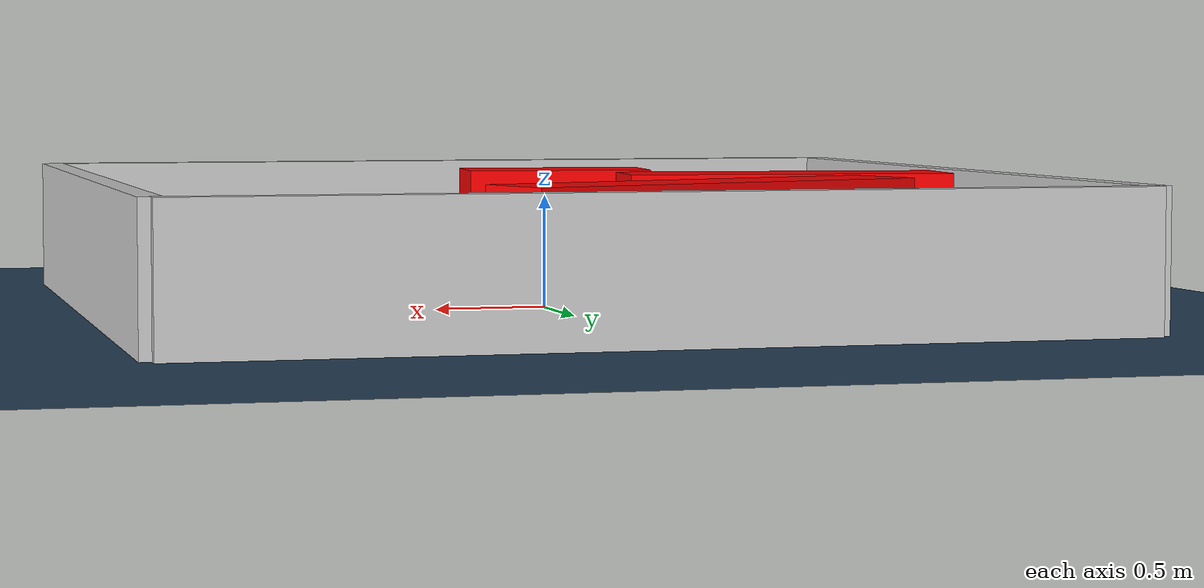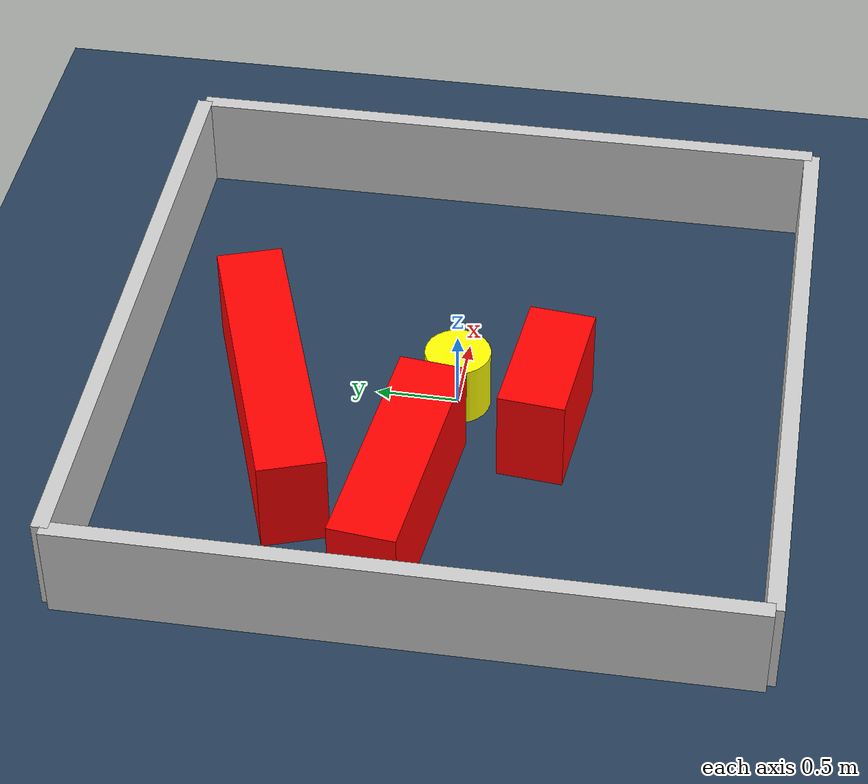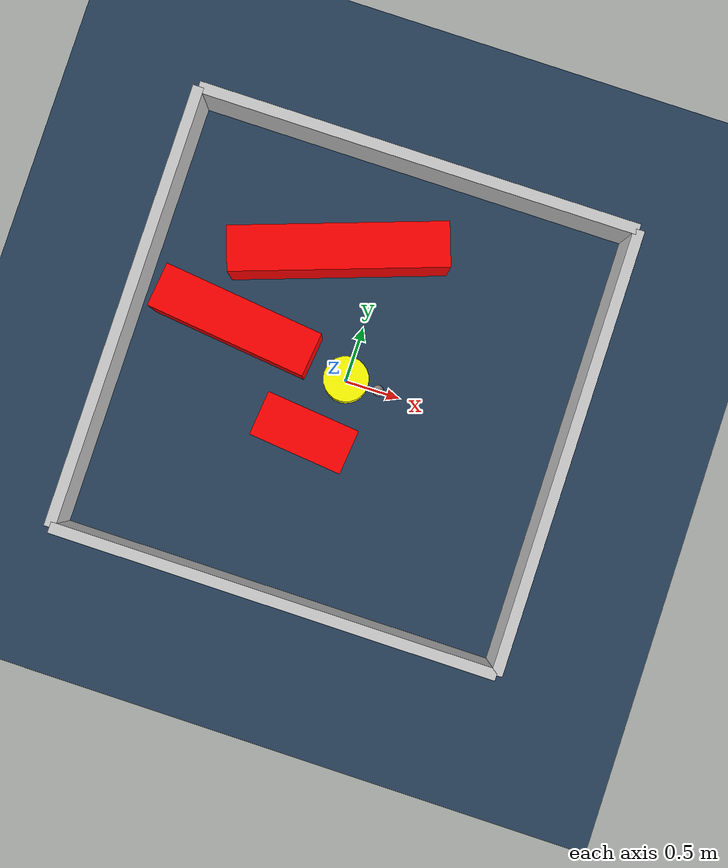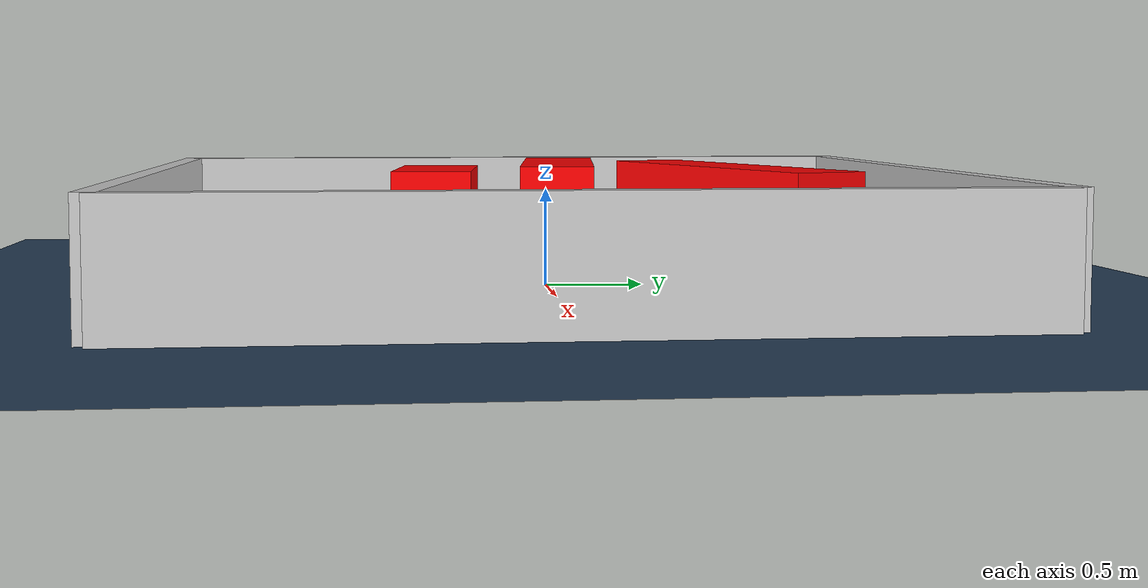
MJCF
<?xml version="1.0" ?>
<mujoco model="generated_environment">
  <option timestep="0.01" integrator="RK4" cone="elliptic"/>
  <default>
    <geom density="1"/>
  </default>
  <asset>
    <texture builtin="gradient" height="3072" rgb1="0.3 0.5 0.7" rgb2="0 0 0" type="skybox" width="512"/>
    <texture builtin="checker" height="300" mark="edge" markrgb="0.8 0.8 0.8" name="groundplane" rgb1="0.2 0.3 0.4" rgb2="0.1 0.2 0.3" type="2d" width="300"/>
    <material name="groundplane" reflectance="0.2" texrepeat="5 5" texture="groundplane" texuniform="true"/>
    <material name="robot" rgba="0.0 1.0 0.0 1"/>
  </asset>
  <worldbody>
    <light dir="0 0 -1" directional="true" pos="0 0 1.5"/>
    <geom condim="4" friction="1.0 0.005 0.001" material="groundplane" name="floor" size="0 0 0.05" type="plane"/>
    <body name="walls">
      <geom name="wall_1" condim="4" pos="-2.0 0.0 0.3" rgba="0.800000011920929 0.800000011920929 0.800000011920929 1.0" size="0.05 2.0 0.3" type="box"/>
      <geom name="wall_2" condim="4" pos="2.0 0.0 0.3" rgba="0.800000011920929 0.800000011920929 0.800000011920929 1.0" size="0.05 2.0 0.3" type="box"/>
      <geom name="wall_3" condim="4" pos="0.0 -2.0 0.3" rgba="0.800000011920929 0.800000011920929 0.800000011920929 1.0" size="2.0 0.05 0.3" type="box"/>
      <geom name="wall_4" condim="4" pos="0.0 2.0 0.3" rgba="0.800000011920929 0.800000011920929 0.800000011920929 1.0" size="2.0 0.05 0.3" type="box"/>
    </body>
    <body name="robot">
      <joint name="joint_x" type="slide" pos="0 0 0" axis="1 0 0"/>
      <joint name="joint_y" type="slide" pos="0 0 0" axis="0 1 0"/>
      <geom name="robot" type="sphere" pos="0.3 0.0 0.2" size="0.05" mass="5." friction="1.0 0.005 0.0001" condim="4" rgba="0.5 0.5 0.5 1.0"/>
      <site name="sensor_ball"/>
    </body>
    <body name="obstacle_movable_1">
      <geom name="obstacle_movable_1" condim="4" pos="0.0 0.0 0.2" euler="0 0 0.0" friction="1.0 0.005 0.001" rgba="1.0 1.0 0.0 1.0" size="0.2 0.2 0.0" type="cylinder" mass="0.1"/>
      <joint type="free"/>
    </body>
    <body name="obstacle_2_static">
      <geom name="obstacle_2_static" condim="4" pos="-0.1926449273217561 -0.5590321268925074 0.3" euler="0 0 174.23860575833586" friction="1.0 0.005 0.001" rgba="1 0 0 1" size="0.4211076015471287 0.2 0.3" type="box"/>
    </body>
    <body name="obstacle_3_static">
      <geom name="obstacle_3_static" condim="4" pos="-1.0656301438282558 0.1766890934909482 0.3" euler="0 0 353.49894650200616" friction="1.0 0.005 0.001" rgba="1 0 0 1" size="0.7313519154443449 0.2 0.3" type="box"/>
    </body>
    <body name="obstacle_4_static">
      <geom name="obstacle_4_static" condim="4" pos="-0.4158780043734417 1.0569400543118943 0.3" euler="0 0 19.288735668068284" friction="1.0 0.005 0.001" rgba="1 0 0 1" size="0.96292733265236 0.2 0.3" type="box"/>
    </body>
  </worldbody>
  <actuator>
    <motor name="actuator_x" joint="joint_x" gear="1" ctrlrange="-1 1"/>
    <motor name="actuator_y" joint="joint_y" gear="1" ctrlrange="-1 1"/>
  </actuator>
</mujoco>
